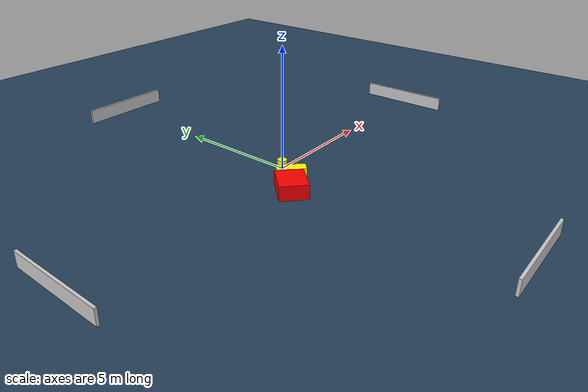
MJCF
<?xml version="1.0" ?>
<mujoco model="generated_environment">
  <option timestep="0.01" integrator="RK4" cone="elliptic"/>
  <default>
    <geom density="1"/>
  </default>
  <asset>
    <texture builtin="gradient" height="3072" name="skybox" rgb1="0.3 0.5 0.7" rgb2="0 0 0" type="skybox" width="512"/>
    <texture builtin="checker" height="300" name="groundplane" rgb1="0.2 0.3 0.4" rgb2="0.1 0.2 0.3" type="2d" width="300"/>
    <material name="groundplane" reflectance="0.2" texrepeat="5 5" texture="groundplane"/>
  </asset>
  <worldbody>
    <light dir="0 0 -1" directional="true" pos="0 0 1.5"/>
    <geom condim="3" friction="0.5 0.005 0.001" material="groundplane" name="floor" pos="0 0 0" size="0 0 0.05" type="plane"/>
    <body name="walls">
      <geom name="wall_1" condim="4" pos="-10.0 0.0 0.3" rgba="0.800000011920929 0.800000011920929 0.800000011920929 1.0" size="0.05 2.0 0.3" type="box"/>
      <geom name="wall_2" condim="4" pos="10.0 0.0 0.3" rgba="0.800000011920929 0.800000011920929 0.800000011920929 1.0" size="0.05 2.0 0.3" type="box"/>
      <geom name="wall_3" condim="4" pos="0.0 -10.0 0.3" rgba="0.800000011920929 0.800000011920929 0.800000011920929 1.0" size="2.0 0.05 0.3" type="box"/>
      <geom name="wall_4" condim="4" pos="0.0 10.0 0.3" rgba="0.800000011920929 0.800000011920929 0.800000011920929 1.0" size="2.0 0.05 0.3" type="box"/>
    </body>
    <body name="robot">
      <joint name="joint_x" type="slide" pos="0 0 0" axis="1 0 0"/>
      <joint name="joint_y" type="slide" pos="0 0 0" axis="0 1 0"/>
      <geom name="robot" type="cylinder" pos="0.0 0.0 0.2" size="0.2 0.2 0.0" mass="5.0" friction="1.0 0.005 0.0001" condim="4" rgba="1.0 1.0 0.0 1.0"/>
    </body>
    <body name="obstacle_1_movable">
      <geom name="obstacle_1_movable" condim="4" pos="-0.5964291609801882 -0.9229680843584369 0.3" euler="0 0 313.6129874231832" friction="0.0 0.005 0.001" rgba="1.0 1.0 0.0 1.0" size="0.5777709921490839 0.2178820803878012 0.3" type="box" mass="0.1"/>
      <joint type="free"/>
    </body>
    <body name="obstacle_2_static">
      <geom name="obstacle_2_static" condim="4" pos="-1.2968913399853437 -1.4931023158107943 0.3" euler="0 0 136.9926204809747" friction="0.0 0.005 0.001" rgba="1.0 0.0 0.0 1.0" size="0.5600480049447732 0.641934541495663 0.3" type="box"/>
    </body>
  </worldbody>
  <actuator>
    <motor name="actuator_x" joint="joint_x" gear="1" ctrlrange="-1 1"/>
    <motor name="actuator_y" joint="joint_y" gear="1" ctrlrange="-1 1"/>
  </actuator>
</mujoco>
